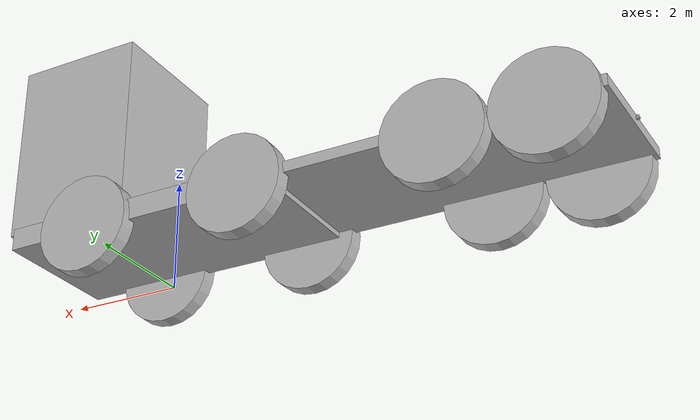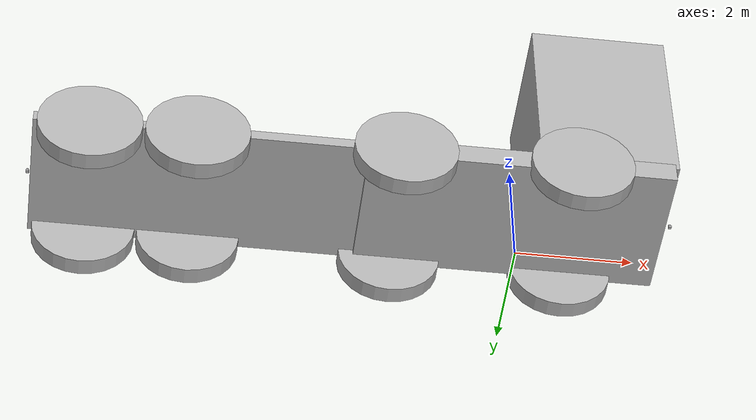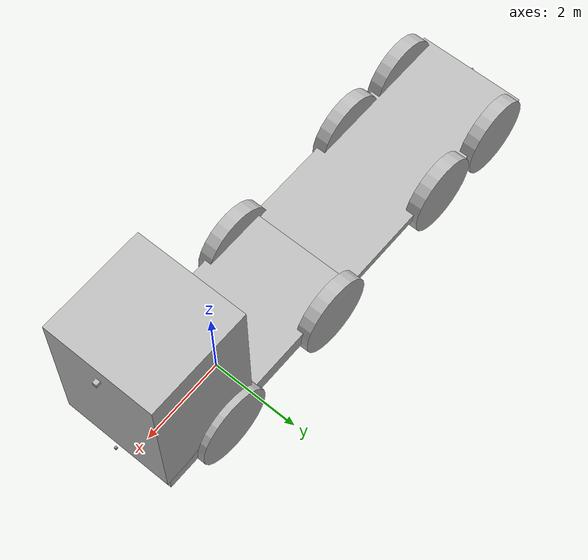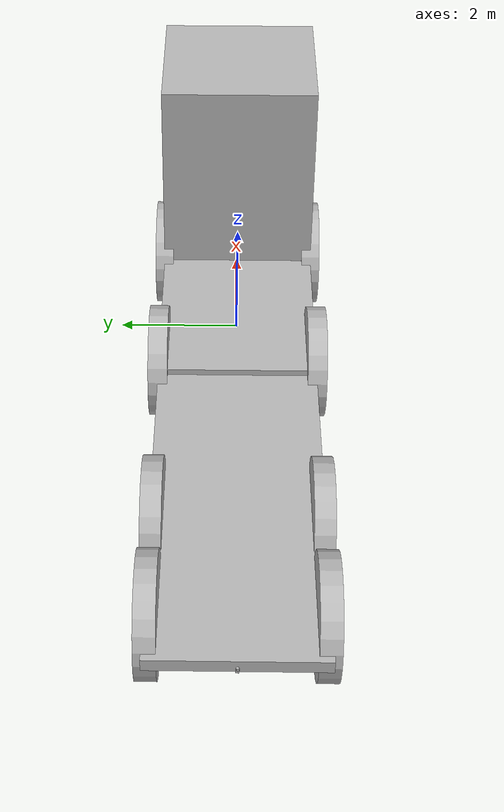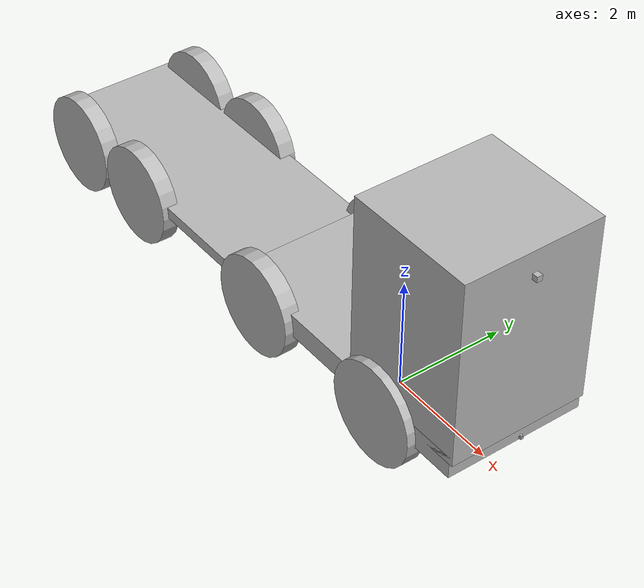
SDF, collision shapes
<?xml version='1.0'?>
<sdf version='1.4'>
    <model name="at_volvo">
        <static>false</static>

        <!-- Main vehicle Body -->
        <link name='chassis'>
          <!-- pose of the vehicle wrt model origin -->
            <pose>0 0 1 0 0 0</pose>

            <!-- Inertia of a box: http://en.wikipedia.org/wiki/List_of_moments_of_inertia -->
            <inertial>
                <mass>2300.0</mass>
                <inertia>
                    <ixx>937.5</ixx>  <!-- for a box: ixx = 0.083 * mass * (y*y + z*z) -->
                    <ixy>0.0</ixy>    <!-- for a box: ixy = 0 -->
                    <ixz>0.0</ixz>    <!-- for a box: ixz = 0 -->
                    <iyy>8520.8</iyy>  <!-- for a box: iyy = 0.083 * mass * (x*x + z*z) -->
                    <iyz>0.0</iyz>    <!-- for a box: iyz = 0 -->
                    <izz>9083.3</izz>  <!-- for a box: izz = 0.083 * mass * (x*x + y*y) -->
                </inertia>
            </inertial>

            <!-- Collision box -->
            <collision name='collision'>
                <geometry>
                    <box>
                        <size>5.250 2.495 0.4</size>
                    </box>
                </geometry>
            </collision>

            <!-- Appearence box -->
            <visual name='visual'>
                <geometry>
                     <box>
                        <size>5.250 2.495 0.4</size>
                    </box>
                </geometry>
            </visual>

        </link>

        <!-- Main cabinet -->
        <link name='cabinet'>

            <!-- pose of the vehicle wrt model origin -->
            <pose>1.5 0 2.75 0 0 0</pose>

            <!-- Inertia of a box: http://en.wikipedia.org/wiki/List_of_moments_of_inertia -->
            <inertial>
                <mass>1000.0</mass>
                <inertia>
                    <ixx>937.5</ixx>  <!-- for a box: ixx = 0.083 * mass * (y*y + z*z) -->
                    <ixy>0.0</ixy>    <!-- for a box: ixy = 0 -->
                    <ixz>0.0</ixz>    <!-- for a box: ixz = 0 -->
                    <iyy>8520.8</iyy>  <!-- for a box: iyy = 0.083 * mass * (x*x + z*z) -->
                    <iyz>0.0</iyz>    <!-- for a box: iyz = 0 -->
                    <izz>9083.3</izz>  <!-- for a box: izz = 0.083 * mass * (x*x + y*y) -->
                </inertia>
            </inertial>

            <!-- Collision box -->
            <collision name='collision'>
                <geometry>
                    <box>
                        <size>2.375 2.495 3.353</size>
                    </box>
                </geometry>
            </collision>

            <!-- Appearence box -->
            <visual name='visual'>
                <geometry>
                    <box>
                        <size>2.375 2.495 3.353</size>
                    </box>
                </geometry>
            </visual>

        </link>

 <!-- trailer -->
        <link name='trailer'>

            <!-- pose of the vehicle wrt model origin -->
            <pose>-5.25 0 1 0 0 0</pose>

            <!-- Inertia of a box: http://en.wikipedia.org/wiki/List_of_moments_of_inertia -->
            <inertial>
                <mass>2300.0</mass>
                <inertia>
                    <ixx>937.5</ixx>  <!-- for a box: ixx = 0.083 * mass * (y*y + z*z) -->
                    <ixy>0.0</ixy>    <!-- for a box: ixy = 0 -->
                    <ixz>0.0</ixz>    <!-- for a box: ixz = 0 -->
                    <iyy>8520.8</iyy>  <!-- for a box: iyy = 0.083 * mass * (x*x + z*z) -->
                    <iyz>0.0</iyz>    <!-- for a box: iyz = 0 -->
                    <izz>9083.3</izz>  <!-- for a box: izz = 0.083 * mass * (x*x + y*y) -->
                </inertia>
            </inertial>

            <!-- Collision box -->
            <collision name='collision'>
                <geometry>
                    <box>
                        <size>6. 2.495 0.2</size>
                    </box>
                </geometry>
            </collision>

            <!-- Appearence box -->
            <visual name='visual'>
                <geometry>
                    <box>
                        <size>6. 2.495 0.2</size>
                    </box>
                </geometry>
            </visual>

        </link>

        <!-- Front left wheel -->
        <link name="front_left_wheel">

            <pose>1 1.2475 0.882 0 1.5707 1.5707</pose>

            <inertial> <!-- Inertia of a cylinder: http://en.wikipedia.org/wiki/List_of_moments_of_inertia -->
                <mass>100.0</mass>
                <inertia>
                    <ixx>6.5</ixx>  <!-- for a cylinder: ixx = 0.083 * mass * (3*radius^2 + height) -->
                    <ixy>0.0</ixy>    <!-- for a cylinder: ixy = 0 -->
                    <ixz>0.0</ixz>    <!-- for a cylinder: ixz = 0 -->
                    <iyy>6.5</iyy> <!-- for a cylinder: iyy = 0.083 * mass * (3*radius^2 + height) -->
                    <iyz>0.0</iyz>    <!-- for a cylinder: iyz = 0 -->
                    <izz>12.25</izz>  <!-- for a cylinder: izz = 0.5 * mass * radius^2 -->
                </inertia>
            </inertial>

            <collision name="collision">
                <geometry>
                    <cylinder>
                    <radius>0.882</radius>
                    <length>0.3</length>
                    </cylinder>
                </geometry>
            </collision>
            <visual name="visual">
                <geometry>
                    <cylinder>
                    <radius>0.882</radius>
                    <length>0.3</length>
                    </cylinder>
                </geometry>
            </visual>
        </link>

        <!-- Front right wheel -->
        <link name="front_right_wheel">

            <pose>1 -1.2475 0.882 0 1.5707 1.5707</pose>

            <inertial> <!-- Inertia of a cylinder: http://en.wikipedia.org/wiki/List_of_moments_of_inertia -->
                <mass>100.0</mass>
                <inertia>
                    <ixx>6.5</ixx>  <!-- for a cylinder: ixx = 0.083 * mass * (3*radius^2 + height) -->
                    <ixy>0.0</ixy>    <!-- for a cylinder: ixy = 0 -->
                    <ixz>0.0</ixz>    <!-- for a cylinder: ixz = 0 -->
                    <iyy>6.5</iyy> <!-- for a cylinder: iyy = 0.083 * mass * (3*radius^2 + height) -->
                    <iyz>0.0</iyz>    <!-- for a cylinder: iyz = 0 -->
                    <izz>12.25</izz>  <!-- for a cylinder: izz = 0.5 * mass * radius^2 -->
                </inertia>
            </inertial>

            <collision name="collision">
                <geometry>
                    <cylinder>
                    <radius>0.882</radius>
                    <length>0.3</length>
                    </cylinder>
                </geometry>
            </collision>
            <visual name="visual">
                <geometry>
                    <cylinder>
                    <radius>0.882</radius>
                    <length>0.3</length>
                    </cylinder>
                </geometry>
            </visual>
        </link>

        <!-- Rear left wheel -->
        <link name="rear_left_wheel">

            <pose>-2 1.2475 0.882 0 1.5707 1.5707</pose>

            <inertial> <!-- Inertia of a cylinder: http://en.wikipedia.org/wiki/List_of_moments_of_inertia -->
                <mass>100.0</mass>
                <inertia>
                    <ixx>6.5</ixx>  <!-- for a cylinder: ixx = 0.083 * mass * (3*radius^2 + height) -->
                    <ixy>0.0</ixy>    <!-- for a cylinder: ixy = 0 -->
                    <ixz>0.0</ixz>    <!-- for a cylinder: ixz = 0 -->
                    <iyy>6.5</iyy> <!-- for a cylinder: iyy = 0.083 * mass * (3*radius^2 + height) -->
                    <iyz>0.0</iyz>    <!-- for a cylinder: iyz = 0 -->
                    <izz>12.25</izz>  <!-- for a cylinder: izz = 0.5 * mass * radius^2 -->
                </inertia>
            </inertial>

            <collision name="collision">
                <geometry>
                    <cylinder>
                    <radius>0.882</radius>
                    <length>0.3</length>
                    </cylinder>
                </geometry>
            </collision>
            <visual name="visual">
                <geometry>
                    <cylinder>
                    <radius>0.882</radius>
                    <length>0.3</length>
                    </cylinder>
                </geometry>
            </visual>
        </link>

        <!-- Rear right wheel -->
        <link name="rear_right_wheel">

            <pose>-2 -1.2475 0.882 0 1.5707 1.5707</pose>

            <inertial> <!-- Inertia of a cylinder: http://en.wikipedia.org/wiki/List_of_moments_of_inertia -->
                <mass>100.0</mass>
                <inertia>
                    <ixx>6.5</ixx>  <!-- for a cylinder: ixx = 0.083 * mass * (3*radius^2 + height) -->
                    <ixy>0.0</ixy>    <!-- for a cylinder: ixy = 0 -->
                    <ixz>0.0</ixz>    <!-- for a cylinder: ixz = 0 -->
                    <iyy>6.5</iyy> <!-- for a cylinder: iyy = 0.083 * mass * (3*radius^2 + height) -->
                    <iyz>0.0</iyz>    <!-- for a cylinder: iyz = 0 -->
                    <izz>12.25</izz>  <!-- for a cylinder: izz = 0.5 * mass * radius^2 -->
                </inertia>
            </inertial>

            <collision name="collision">
                <geometry>
                    <cylinder>
                    <radius>0.882</radius>
                    <length>0.3</length>
                    </cylinder>
                </geometry>
            </collision>
            <visual name="visual">
                <geometry>
                    <cylinder>
                    <radius>0.882</radius>
                    <length>0.3</length>
                    </cylinder>
                </geometry>
            </visual>
        </link>

<!-- trailer left wheel -->
        <link name="trailer_left_wheel">

            <pose>-5.5 1.2 0.882 0 1.5707 1.5707</pose>

            <inertial> <!-- Inertia of a cylinder: http://en.wikipedia.org/wiki/List_of_moments_of_inertia -->
                <mass>100.0</mass>
                <inertia>
                    <ixx>6.5</ixx>  <!-- for a cylinder: ixx = 0.083 * mass * (3*radius^2 + height) -->
                    <ixy>0.0</ixy>    <!-- for a cylinder: ixy = 0 -->
                    <ixz>0.0</ixz>    <!-- for a cylinder: ixz = 0 -->
                    <iyy>6.5</iyy> <!-- for a cylinder: iyy = 0.083 * mass * (3*radius^2 + height) -->
                    <iyz>0.0</iyz>    <!-- for a cylinder: iyz = 0 -->
                    <izz>12.25</izz>  <!-- for a cylinder: izz = 0.5 * mass * radius^2 -->
                </inertia>
            </inertial>

            <collision name="collision">
                <geometry>
                    <cylinder>
                    <radius>0.882</radius>
                    <length>0.3</length>
                    </cylinder>
                </geometry>
            </collision>
            <visual name="visual">
                <geometry>
                    <cylinder>
                    <radius>0.882</radius>
                    <length>0.3</length>
                    </cylinder>
                </geometry>
            </visual>
        </link>

 <!-- Trailer right wheel -->
        <link name="trailer_right_wheel">

            <pose>-5.5 -1.2 0.882 0 1.5707 1.5707</pose>

            <inertial> <!-- Inertia of a cylinder: http://en.wikipedia.org/wiki/List_of_moments_of_inertia -->
                <mass>100.0</mass>
                <inertia>
                    <ixx>6.5</ixx>  <!-- for a cylinder: ixx = 0.083 * mass * (3*radius^2 + height) -->
                    <ixy>0.0</ixy>    <!-- for a cylinder: ixy = 0 -->
                    <ixz>0.0</ixz>    <!-- for a cylinder: ixz = 0 -->
                    <iyy>6.5</iyy> <!-- for a cylinder: iyy = 0.083 * mass * (3*radius^2 + height) -->
                    <iyz>0.0</iyz>    <!-- for a cylinder: iyz = 0 -->
                    <izz>12.25</izz>  <!-- for a cylinder: izz = 0.5 * mass * radius^2 -->
                </inertia>
            </inertial>

            <collision name="collision">
                <geometry>
                    <cylinder>
                    <radius>0.882</radius>
                    <length>0.3</length>
                    </cylinder>
                </geometry>
            </collision>
            <visual name="visual">
                <geometry>
                    <cylinder>
                    <radius>0.882</radius>
                    <length>0.3</length>
                    </cylinder>
                </geometry>
            </visual>
        </link>

        <!-- trailer left wheel 2 -->
        <link name="trailer_left_wheel_2">

            <pose>-7.3 1.2 0.882 0 1.5707 1.5707</pose>

            <inertial> <!-- Inertia of a cylinder: http://en.wikipedia.org/wiki/List_of_moments_of_inertia -->
                <mass>100.0</mass>
                <inertia>
                    <ixx>6.5</ixx>  <!-- for a cylinder: ixx = 0.083 * mass * (3*radius^2 + height) -->
                    <ixy>0.0</ixy>    <!-- for a cylinder: ixy = 0 -->
                    <ixz>0.0</ixz>    <!-- for a cylinder: ixz = 0 -->
                    <iyy>6.5</iyy> <!-- for a cylinder: iyy = 0.083 * mass * (3*radius^2 + height) -->
                    <iyz>0.0</iyz>    <!-- for a cylinder: iyz = 0 -->
                    <izz>12.25</izz>  <!-- for a cylinder: izz = 0.5 * mass * radius^2 -->
                </inertia>
            </inertial>

            <collision name="collision">
                <geometry>
                    <cylinder>
                    <radius>0.882</radius>
                    <length>0.3</length>
                    </cylinder>
                </geometry>
            </collision>
            <visual name="visual">
                <geometry>
                    <cylinder>
                    <radius>0.882</radius>
                    <length>0.3</length>
                    </cylinder>
                </geometry>
            </visual>
        </link>

        <!-- trailer right wheel 2 -->
        <link name="trailer_right_wheel_2">

            <pose>-7.3 -1.2 0.882 0 1.5707 1.5707</pose>

            <inertial> <!-- Inertia of a cylinder: http://en.wikipedia.org/wiki/List_of_moments_of_inertia -->
                <mass>100.0</mass>
                <inertia>
                    <ixx>6.5</ixx>  <!-- for a cylinder: ixx = 0.083 * mass * (3*radius^2 + height) -->
                    <ixy>0.0</ixy>    <!-- for a cylinder: ixy = 0 -->
                    <ixz>0.0</ixz>    <!-- for a cylinder: ixz = 0 -->
                    <iyy>6.5</iyy> <!-- for a cylinder: iyy = 0.083 * mass * (3*radius^2 + height) -->
                    <iyz>0.0</iyz>    <!-- for a cylinder: iyz = 0 -->
                    <izz>12.25</izz>  <!-- for a cylinder: izz = 0.5 * mass * radius^2 -->
                </inertia>
            </inertial>

            <collision name="collision">
                <geometry>
                    <cylinder>
                    <radius>0.882</radius>
                    <length>0.3</length>
                    </cylinder>
                </geometry>
            </collision>
            <visual name="visual">
                <geometry>
                    <cylinder>
                    <radius>0.882</radius>
                    <length>0.3</length>
                    </cylinder>
                </geometry>
            </visual>
        </link>

        <joint name="trailer_left_wheel_hinge" type="revolute">
            <pose>0 0 0 0 0 0</pose>
            <child>trailer_left_wheel</child>
            <parent>trailer</parent>
                <axis>
                    <xyz>0 1 0</xyz>
                </axis>
        </joint>

        <joint name="trailer_right_wheel_hinge" type="revolute">
            <pose>0 0 0 0 0 0</pose>
            <child>trailer_right_wheel</child>
            <parent>trailer</parent>
                <axis>
                    <xyz>0 1 0</xyz>
                </axis>
        </joint>

        <joint name="trailer_left_wheel_hinge_2" type="revolute">
            <pose>0 0 0 0 0 0</pose>
            <child>trailer_left_wheel</child>
            <parent>trailer</parent>
                <axis>
                    <xyz>0 1 0</xyz>
                </axis>
        </joint>

        <joint name="trailer_right_wheel_hinge_2" type="revolute">
            <pose>0 0 0 0 0 0</pose>
            <child>trailer_right_wheel</child>
            <parent>trailer</parent>
                <axis>
                    <xyz>0 1 0</xyz>
                </axis>
        </joint>

        <joint name="front_left_wheel_hinge" type="revolute">
            <pose>0 0 0 0 0 0</pose>
            <child>front_left_wheel</child>
            <parent>chassis</parent>
                <axis>
                    <xyz>0 1 0</xyz>
                </axis>
        </joint>

        <joint name="front_right_wheel_hinge" type="revolute">
            <pose>0 0 0 0 0 0</pose>
            <child>front_right_wheel</child>
            <parent>chassis</parent>
                <axis>
                    <xyz>0 1 0</xyz>
                </axis>
        </joint>

        <joint name="rear_left_wheel_hinge" type="revolute">
            <pose>0 0 0 0 0 0</pose>
            <child>rear_left_wheel</child>
            <parent>chassis</parent>
                <axis>
                    <xyz>0 1 0</xyz>
                </axis>
        </joint>

        <joint name="rear_right_wheel_hinge" type="revolute">
            <pose>0 0 0 0 0 0</pose>
            <child>rear_right_wheel</child>
            <parent>chassis</parent>
                <axis>
                    <xyz>0 1 0</xyz>
                </axis>
        </joint>

       <joint name="main_cabinet_hinge" type="revolute">
            <pose>1.5 0 3 0 0 0</pose>
            <child>cabinet</child>
            <parent>chassis</parent>
                <axis>
                    <xyz>0 1 0</xyz>
               <limit>
                    <upper>0</upper>
                    <lower>0</lower>
                </limit>
                </axis>
        </joint>

    <joint name="trailer_cabinet_hinge" type="revolute">
            <pose>-5.75 0 1 0 0 0</pose>
            <child>trailer</child>
            <parent>chassis</parent>
                <axis>
                    <xyz>0 1 0</xyz>
               <limit>
                    <upper>0</upper>
                    <lower>0</lower>
                </limit>
                </axis>
        </joint>

        <include>
            <uri>model://hokuyo</uri>
            <name>front_lidar</name>
            <pose>2.75 0 1 0 0 0</pose> <!-- pose in global coordinate frame -->
        </include>

        <include>
            <uri>model://hokuyo</uri>
            <name>rear_lidar</name>
            <pose>-8.3 0 1 0 0 3</pose> <!-- pose in global coordinate frame -->
        </include>

        <include>
            <uri>model://camera</uri>
            <name>front_camera</name>
            <pose>2.75 0 4 0 0 0</pose> <!-- pose in global coordinate frame -->
        </include>

        <joint name="front_lidar_joint" type="revolute">
            <child>front_lidar::link</child>
            <parent>chassis</parent>
            <axis>
                <xyz>0 0 1</xyz>
                <limit>
                    <upper>0</upper>
                    <lower>0</lower>
                </limit>
            </axis>
        </joint>

  <joint name="rear_lidar_joint" type="revolute">
            <child>rear_lidar::link</child>
            <parent>trailer</parent>
            <axis>
                <xyz>0 0 1</xyz>
                <limit>
                    <upper>0</upper>
                    <lower>0</lower>
                </limit>
            </axis>
        </joint>

        <joint name="front_camera" type="revolute">
            <child>front_camera::link</child>
            <parent>cabinet</parent>
            <axis>
                <xyz>0 0 1</xyz>
                <limit>
                    <upper>0</upper>
                    <lower>0</lower>
                </limit>
            </axis>
        </joint>

     </model>

</sdf>

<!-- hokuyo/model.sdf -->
<sdf version="1.5">
  <model name="hokuyo">
    <pose>0 0 0.035 0 0 0</pose>
    <link name="link">
      <inertial>
        <mass>0.1</mass>
      </inertial>
      <visual name="visual">
        <geometry>
          <mesh>
            <uri>model://../model_source/models/hokuyo/meshes/hokuyo.dae</uri>
          </mesh>
        </geometry>
      </visual>
      <collision name="collision-base">
        <pose>0 0 -0.0145 0 0 0</pose>
        <geometry>
          <box>
            <size>0.05 0.05 0.041</size>
          </box>
        </geometry>
      </collision>
      <collision name="collision-top">
        <pose>0 0 0.0205 0 0 0</pose>
        <geometry>
          <cylinder>
            <radius>0.021</radius>
            <length>0.029</length>
          </cylinder>
        </geometry>
      </collision>
      <sensor name="laser" type="ray">
        <pose>0.01 0 0.0175 0 -0 0</pose>
        <ray>
          <scan>
            <horizontal>
              <samples>640</samples>
              <resolution>1</resolution>
              <min_angle>-2.26889</min_angle>
              <max_angle>2.268899</max_angle>
            </horizontal>
          </scan>
          <range>
            <min>0.08</min>
            <max>10</max>
            <resolution>0.01</resolution>
          </range>
        </ray>
        <plugin name="laser" filename="libRayPlugin.so" />
        <always_on>1</always_on>
        <update_rate>30</update_rate>
        <visualize>true</visualize>
      </sensor>
    </link>
  </model>
</sdf>

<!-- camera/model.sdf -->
<sdf version="1.5">
  <model name="camera">
    <pose>0 0 0.05 0 0 0</pose>
    <link name="link">
      <inertial>
        <mass>0.1</mass>
        <inertia>
          <ixx>0.000166667</ixx>
          <iyy>0.000166667</iyy>
          <izz>0.000166667</izz>
        </inertia>
      </inertial>
      <collision name="collision">
        <geometry>
          <box>
            <size>0.1 0.1 0.1</size>
          </box>
        </geometry>
      </collision>
      <visual name="visual">
        <geometry>
          <box>
            <size>0.1 0.1 0.1</size>
          </box>
        </geometry>
      </visual>
      <sensor name="camera" type="camera">
        <camera>
          <horizontal_fov>1.047</horizontal_fov>
          <image>
            <width>320</width>
            <height>240</height>
          </image>
          <clip>
            <near>0.1</near>
            <far>100</far>
          </clip>
        </camera>
        <always_on>1</always_on>
        <update_rate>30</update_rate>
        <visualize>true</visualize>
      </sensor>
    </link>
  </model>
</sdf>
